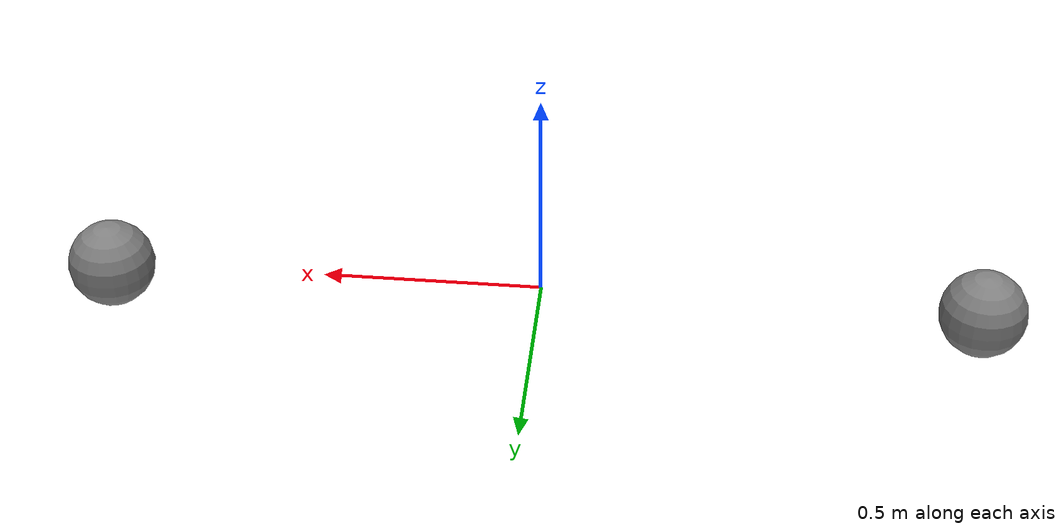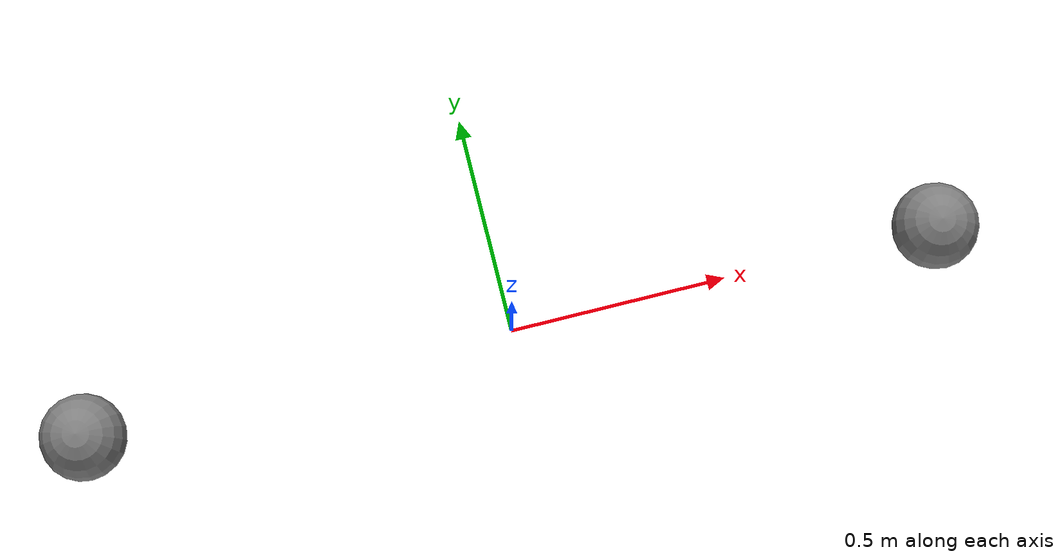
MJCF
<mujoco>
      <option gravity="0 0 0"/>
      <worldbody>
        <body name="b1" pos="1 0 0">
          <freejoint/>
          <geom type="sphere" size="0.1" mass="1.0"/>
        </body>
        <body name="b2" pos="-1 0 0">
          <freejoint/>
          <geom type="sphere" size="0.1" mass="1.0"/>
        </body>
      </worldbody>
      <sensor>
        <subtreeangmom body="world"/>
      </sensor>
    </mujoco>
